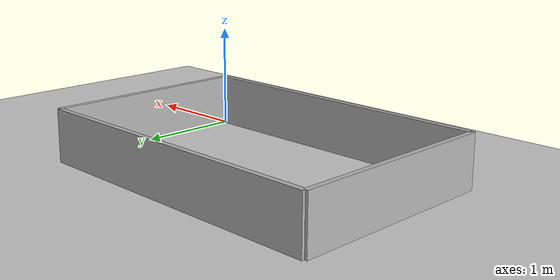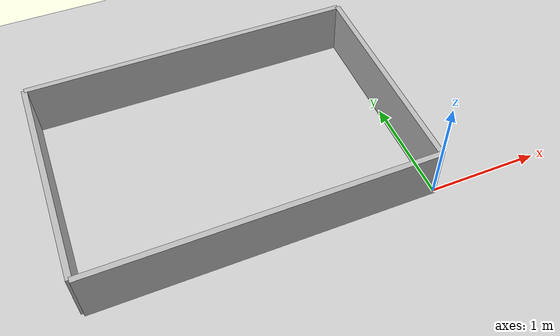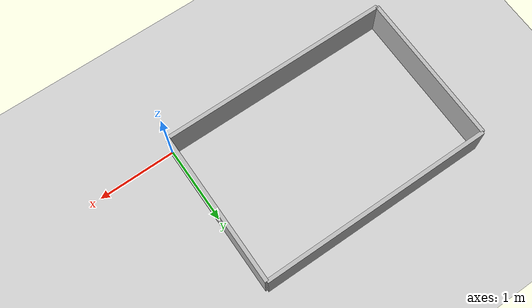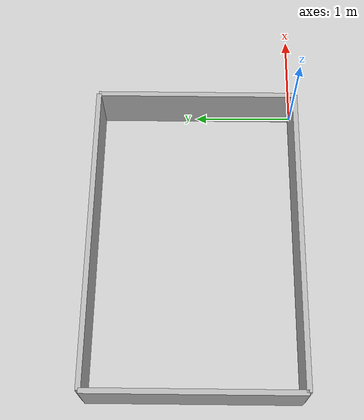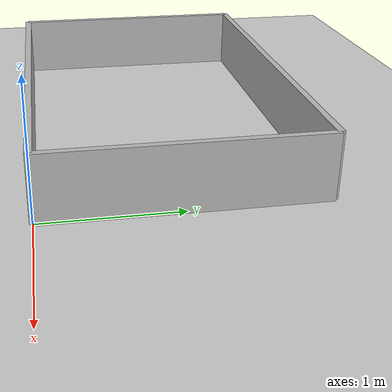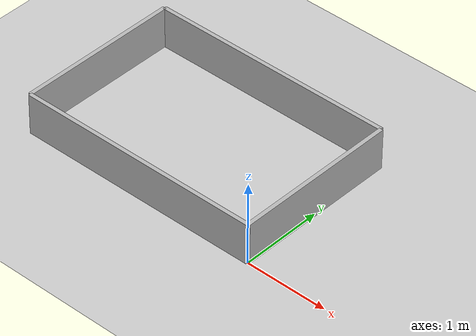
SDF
<sdf version="1.7">
 <world name="bordered_world">
  <model name="ground_plane">
   <static>1</static>
   <link name="link">
    <collision name="collision">
     <geometry><plane><normal>0 0 1</normal><size>100 100</size></plane></geometry>
     <surface><friction><ode><mu>100</mu><mu2>50</mu2></ode></friction></surface>
    </collision>
    <visual name="visual">
     <cast_shadows>0</cast_shadows>
     <geometry><plane><normal>0 0 1</normal><size>100 100</size></plane></geometry>
     <material>
      <script><uri>file://media/materials/scripts/gazebo.material</uri><name>Gazebo/Grey</name></script>
     </material>
    </visual>
   </link>
  </model>
  <light name="sun" type="directional">
   <pose>0 0 10 0 -0 0</pose>
   <diffuse>0.8 0.8 0.8 1</diffuse>
   <specular>0.2 0.2 0.2 1</specular>
   <attenuation>
    <range>1000</range>
    <constant>0.9</constant>
    <linear>0.01</linear>
    <quadratic>0.001</quadratic>
   </attenuation>
   <direction>-0.5 0.1 -0.9</direction>
   <spot><inner_angle>0</inner_angle><outer_angle>0</outer_angle><falloff>0</falloff></spot>
  </light>
  <model name="wall_north">
   <pose>-3 0 0 0 -0 0</pose>
   <static>1</static>
   <link name="link">
    <collision name="collision"><geometry><box><size>3 0.05 0.5</size></box></geometry></collision>
    <visual name="visual">
     <geometry><box><size>3 0.05 0.5</size></box><material><ambient>0.7 0.7 0.7 1</ambient></material></geometry>
    </visual>
    <pose>1.5 2 0.25 0 -0 0</pose>
   </link>
  </model>
  <model name="wall_south">
   <pose>-3 0 0 0 -0 0</pose>
   <static>1</static>
   <link name="link">
    <collision name="collision"><geometry><box><size>3 0.05 0.5</size></box></geometry></collision>
    <visual name="visual">
     <geometry><box><size>3 0.05 0.5</size></box><material><ambient>0.7 0.7 0.7 1</ambient></material></geometry>
    </visual>
    <pose>1.5 0 0.25 0 -0 0</pose>
   </link>
  </model>
  <model name="wall_east">
   <pose>-3 0 0 0 -0 0</pose>
   <static>1</static>
   <link name="link">
    <collision name="collision"><geometry><box><size>0.05 2 0.5</size></box></geometry></collision>
    <visual name="visual">
     <geometry><box><size>0.05 2 0.5</size></box><material><ambient>0.7 0.7 0.7 1</ambient></material></geometry>
    </visual>
    <pose>3 1 0.25 0 -0 0</pose>
   </link>
  </model>
  <model name="wall_west">
   <pose>-3 0 0 0 -0 0</pose>
   <static>1</static>
   <link name="link">
    <collision name="collision"><geometry><box><size>0.05 2 0.5</size></box></geometry></collision>
    <visual name="visual">
     <geometry><box><size>0.05 2 0.5</size></box><material><ambient>0.7 0.7 0.7 1</ambient></material></geometry>
    </visual>
    <pose>0 1 0.25 0 -0 0</pose>
   </link>
  </model>
  <light name="spotlight" type="spot">
   <pose>1.5 1 1 0 -0 0</pose>
   <diffuse>1 0.8 0.6 1</diffuse>
   <specular>1 0.8 0.6 1</specular>
   <attenuation>
    <range>10</range>
    <constant>0.5</constant>
    <linear>0.01</linear>
    <quadratic>0.001</quadratic>
   </attenuation>
   <direction>0 0 -1</direction>
   <spot><inner_angle>0.1</inner_angle><outer_angle>0.5</outer_angle><falloff>0.5</falloff></spot>
  </light>
  <light name="spotlight1" type="spot">
   <pose>0.5 1.5 1.0 0 0 0</pose>
   <diffuse>1.0 0.8 0.6 1</diffuse>
   <specular>1.0 0.8 0.6 1</specular>
   <attenuation>
    <range>10.0</range>
    <constant>0.5</constant>
    <linear>0.01</linear>
    <quadratic>0.001</quadratic>
   </attenuation>
   <direction>0 0 -1</direction>
   <spot><inner_angle>0.1</inner_angle><outer_angle>0.4</outer_angle><falloff>0.5</falloff></spot>
  </light>
  <light name="spotlight2" type="spot">
   <pose>0.5 0.5 1.0 0 0 0</pose>
   <diffuse>1.0 0.8 0.6 1</diffuse>
   <specular>1.0 0.8 0.6 1</specular>
   <attenuation>
    <range>10.0</range>
    <constant>0.5</constant>
    <linear>0.01</linear>
    <quadratic>0.001</quadratic>
   </attenuation>
   <direction>0 0 -1</direction>
   <spot><inner_angle>0.1</inner_angle><outer_angle>0.4</outer_angle><falloff>0.5</falloff></spot>
  </light>
  <gravity>0 0 -9.8</gravity>
  <magnetic_field>6e-06 2.3e-05 -4.2e-05</magnetic_field>
  <atmosphere type="adiabatic"/>
  <physics type="ode">
   <max_step_size>0.001</max_step_size>
   <real_time_factor>1</real_time_factor>
   <real_time_update_rate>1000</real_time_update_rate>
  </physics>
  <scene><ambient>0.4 0.4 0.4 1</ambient><background>0.7 0.7 0.7 1</background><shadows>1</shadows></scene>
  <audio><device>default</device></audio>
  <spherical_coordinates>
   <surface_model>EARTH_WGS84</surface_model>
   <latitude_deg>0</latitude_deg>
   <longitude_deg>0</longitude_deg>
   <elevation>0</elevation>
   <heading_deg>0</heading_deg>
  </spherical_coordinates>
 </world>
</sdf>
